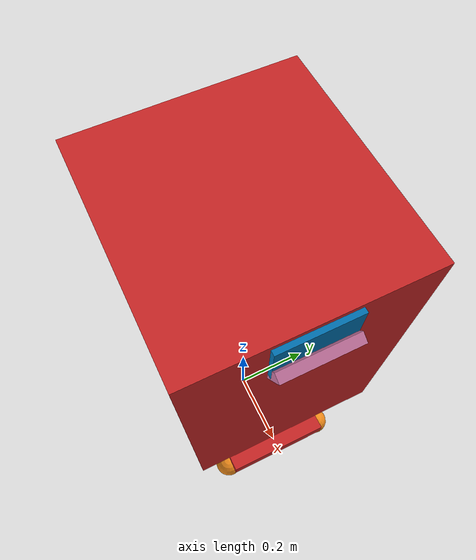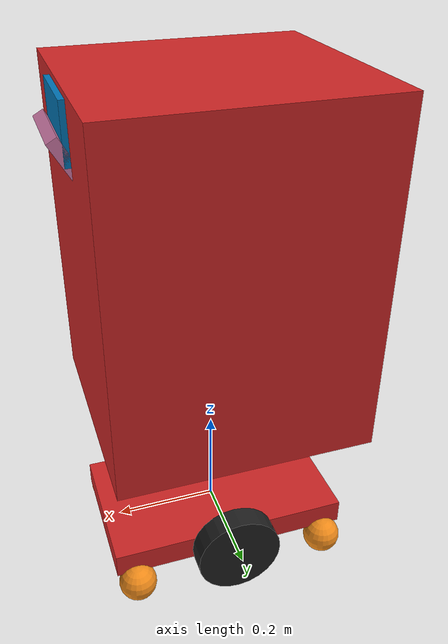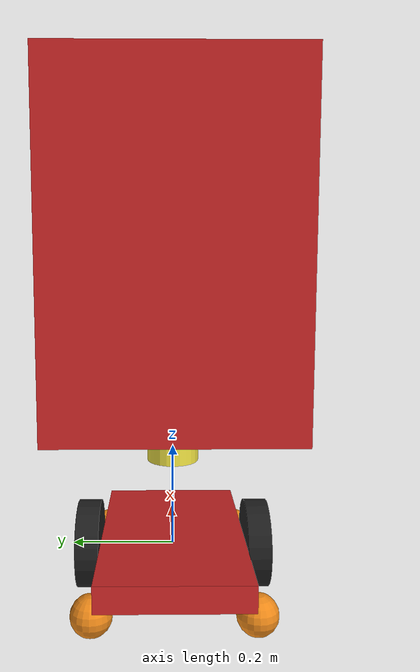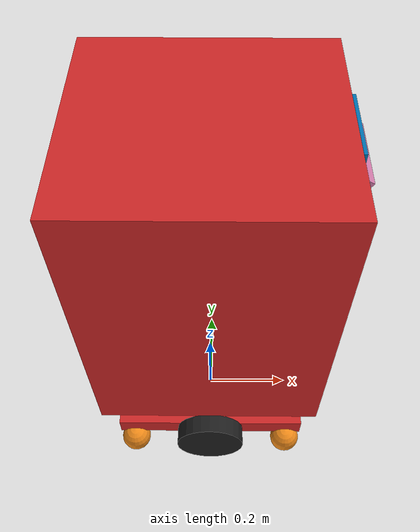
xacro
<?xml version='1.0'?>

<robot name="robot" xmlns:xacro="http://www.ros.org/wiki/xacro">

  <xacro:include filename="$(find robot_description)/urdf/robot_base.gazebo" />
  <xacro:include filename="$(find robot_description)/urdf/materials.xacro" />
  <xacro:include filename="$(find robot_description)/urdf/xacro_variables.xacro" />
  <xacro:include filename="$(find robot_description)/urdf/wheels.xacro" />
  <xacro:include filename="$(find robot_description)/urdf/sensors.xacro" />

  <!-- Add dummy base link -->
  <link name="base_link">
  </link>

  <link name='chassis'>
    <pose>0 0 0.1 0 0 0</pose>

    <inertial>
      <mass value="30.0"/>
      <origin xyz="0.0 0 0.1" rpy="0 0 0"/>
      <inertia
          ixx="1.523" ixy="0" ixz="0"
          iyy="1.597" iyz="0"
          izz="0.803"
      />
    </inertial>

    <collision name='collision'>
      <geometry>
        <box size="${chasis_box_length} ${chasis_box_width} ${chasis_box_height}"/>
      </geometry>
    </collision>

    <visual name='chassis_visual'>
      <origin xyz="0 0 0" rpy=" 0 0 0"/>
      <geometry>
        <box size="${chasis_box_length} ${chasis_box_width} ${chasis_box_height}"/>
      </geometry>
      <material name="red"/>
    </visual>

    <collision name='tower_collision'>
      <origin xyz="0 0 0.58" rpy="0 0 0"/>
      <geometry>
        <box size="${tower_box_length} ${tower_box_width} ${tower_box_height}"/>
      </geometry>
    </collision>

    <visual name='tower_visual'>
      <origin xyz="0 0 0.58" rpy="0 0 0"/>
      <geometry>
        <box size="${tower_box_length} ${tower_box_width} ${tower_box_height}"/>
      </geometry>
      <material name="red"/>
    </visual>

    <collision name='caster_collision'>
      <origin xyz="${chasis_caster_x} ${chasis_caster_y} ${chasis_caster_z}" rpy=" ${chasis_caster_r} ${chasis_caster_p} ${chasis_caster_ya}"/>
      <geometry>
        <sphere radius="${chasis_caster_radius}"/>
      </geometry>
      <surface>
        <friction>
          <ode>
            <mu>0</mu>
            <mu2>0</mu2>
            <slip1>1.0</slip1>
            <slip2>1.0</slip2>
          </ode>
        </friction>
      </surface>
    </collision>

    <visual name='caster_visual'>
      <origin xyz="${chasis_caster_x} ${chasis_caster_y} ${chasis_caster_z}" rpy=" ${chasis_caster_r} ${chasis_caster_p} ${chasis_caster_ya}"/>
      <geometry>
        <sphere radius="${chasis_caster_radius}"/>
      </geometry>
      <material name="orange"/>
    </visual>

    <collision name='caster_collision2'>
      <origin xyz="${chasis_caster2_x} ${chasis_caster2_y} ${chasis_caster2_z}" rpy=" ${chasis_caster_r} ${chasis_caster_p} ${chasis_caster_ya}"/>
      <geometry>
        <sphere radius="${chasis_caster_radius}"/>
      </geometry>
      <surface>
        <friction>
          <ode>
            <mu>0</mu>
            <mu2>0</mu2>
            <slip1>1.0</slip1>
            <slip2>1.0</slip2>
          </ode>
        </friction>
      </surface>
    </collision>

    <visual name='caster2_visual'>
      <origin xyz="${chasis_caster2_x} ${chasis_caster2_y} ${chasis_caster2_z}" rpy=" ${chasis_caster_r} ${chasis_caster_p} ${chasis_caster_ya}"/>
      <geometry>
        <sphere radius="${chasis_caster_radius}"/>
      </geometry>
      <material name="orange"/>
    </visual>

    <collision name='caster_collision3'>
      <origin xyz="${chasis_caster3_x} ${chasis_caster3_y} ${chasis_caster3_z}" rpy=" ${chasis_caster_r} ${chasis_caster_p} ${chasis_caster_ya}"/>
      <geometry>
        <sphere radius="${chasis_caster_radius}"/>
      </geometry>
      <surface>
        <friction>
          <ode>
            <mu>0</mu>
            <mu2>0</mu2>
            <slip1>1.0</slip1>
            <slip2>1.0</slip2>
          </ode>
        </friction>
      </surface>
    </collision>

    <visual name='caster3_visual'>
      <origin xyz="${chasis_caster3_x} ${chasis_caster3_y} ${chasis_caster3_z}" rpy=" ${chasis_caster_r} ${chasis_caster_p} ${chasis_caster_ya}"/>
      <geometry>
        <sphere radius="${chasis_caster_radius}"/>
      </geometry>
      <material name="orange"/>
    </visual>

    <collision name='caster_collision4'>
      <origin xyz="${chasis_caster4_x} ${chasis_caster4_y} ${chasis_caster4_z}" rpy=" ${chasis_caster_r} ${chasis_caster_p} ${chasis_caster_ya}"/>
      <geometry>
        <sphere radius="${chasis_caster_radius}"/>
      </geometry>
      <surface>
        <friction>
          <ode>
            <mu>0</mu>
            <mu2>0</mu2>
            <slip1>1.0</slip1>
            <slip2>1.0</slip2>
          </ode>
        </friction>
      </surface>
    </collision>

    <visual name='caster4_visual'>
      <origin xyz="${chasis_caster4_x} ${chasis_caster4_y} ${chasis_caster4_z}" rpy=" ${chasis_caster_r} ${chasis_caster_p} ${chasis_caster_ya}"/>
      <geometry>
        <sphere radius="${chasis_caster_radius}"/>
      </geometry>
      <material name="orange"/>
    </visual>
  </link>

  <joint name="base_joint" type="fixed">
    <parent link="base_link"/>
    <child link="chassis"/>
    <origin xyz="0 0 0" rpy="0 0 0"/>
  </joint>

  <link name="imu_link">
  </link>

  <joint name="imu_joint" type="fixed">
    <parent link="chassis"/>
    <child link="imu_link"/>
    <origin xyz="0 0 0" rpy="0 0 0"/>
  </joint>

  <link name="lidar_link">
    <visual name="lidar_visual">
      <origin xyz="0 0 0.01" rpy="0 0 0"/>
      <geometry>
        <cylinder radius="0.05" length="0.035"/>
      </geometry>
    </visual>
  </link>

  <joint name="lidar_joint" type="fixed">
    <parent link="chassis"/>
    <child link="lidar_link"/>
    <origin xyz="0 0 0.18" rpy="0 0 0"/>
  </joint>

  <link name="camera_link">
    <visual name="camera_visual">
      <origin xyz="0 0 0" rpy="0 0 0"/>
      <geometry>
        <box size="0.02 0.15 0.1"/>
      </geometry>
    </visual>
  </link>

  <joint name="camera_joint" type="fixed">
    <parent link="chassis"/>
    <child link="camera_link"/>
    <origin xyz="0.239 0 0.84" rpy="0 0 0"/>
  </joint>

  <link name="camera_link_optical">
  </link>

  <joint name="camera_optical_joint" type="fixed">
    <parent link="camera_link"/>
    <child link="camera_link_optical"/>
    <origin xyz="0 0 0" rpy="-1.5707 0 -1.5707"/>
  </joint>

  <link name="camera_link_2">
    <visual name="camera_visual_2">
      <origin xyz="0 0 0" rpy="0 0 0"/>
      <geometry>
        <box size="0.02 0.15 0.1"/>
      </geometry>
    </visual>
  </link>

  <joint name="camera_joint_2" type="fixed">
    <parent link="chassis"/>
    <child link="camera_link_2"/>
    <origin xyz="0.239 0 0.79" rpy="0 0.523598 0"/>
  </joint>

  <link name="camera_link_optical_2">
  </link>

  <joint name="camera_optical_joint_2" type="fixed">
    <parent link="camera_link_2"/>
    <child link="camera_link_optical_2"/>
    <origin xyz="0 0 0" rpy="-1.5707 0 -1.5707"/>
  </joint>

  <!-- Include wheel macro -->
  <xacro:wheels_macro />

</robot>

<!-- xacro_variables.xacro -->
<robot name="robot" xmlns:xacro="http://www.ros.org/wiki/xacro">

<!--Xacro variable declaration-->

<!--Dimentions-->

  <!--Chasis_box-->
  <xacro:property name="chasis_box_length" value="0.478" />
  <xacro:property name="chasis_box_width" value="0.28" />
  <xacro:property name="chasis_box_height" value="0.05" />

  <!--Chasis_caster-->
  <xacro:property name="chasis_caster_radius" value="0.0375" />

  <!--Wheel_cylinder-->
  <xacro:property name="wheel_cylinder_radius" value="0.085" />
  <xacro:property name="wheel_cylinder_height" value="0.045" />

  <!--Tower box-->
  <xacro:property name="tower_box_length" value="0.478" />
  <xacro:property name="tower_box_width" value="0.448" />
  <xacro:property name="tower_box_height" value="0.64" />

<!--Positions-->
  <!--Chasis_box-->
  <xacro:property name="chasis_box_x" value="0" />
  <xacro:property name="chasis_box_y" value="0" />
  <xacro:property name="chasis_box_z" value="0.15" />

  <xacro:property name="chasis_box_r" value="0" />
  <xacro:property name="chasis_box_p" value="0" />
  <xacro:property name="chasis_box_ya" value="0" />

  <!--Chasis_caster-->

  <xacro:property name="chasis_caster_r" value="0" />
  <xacro:property name="chasis_caster_p" value="0" />
  <xacro:property name="chasis_caster_ya" value="0" />

  <xacro:property name="chasis_caster_x" value="-0.2" />
  <xacro:property name="chasis_caster_y" value="0.145" />
  <xacro:property name="chasis_caster_z" value="-0.047" />

  <xacro:property name="chasis_caster2_x" value="0.2" />
  <xacro:property name="chasis_caster2_y" value="0.145" />
  <xacro:property name="chasis_caster2_z" value="-0.047" />

  <xacro:property name="chasis_caster3_x" value="-0.2" />
  <xacro:property name="chasis_caster3_y" value="-0.145" />
  <xacro:property name="chasis_caster3_z" value="-0.047" />

  <xacro:property name="chasis_caster4_x" value="0.2" />
  <xacro:property name="chasis_caster4_y" value="-0.145" />
  <xacro:property name="chasis_caster4_z" value="-0.047" />

  <!--Wheel-->
  <xacro:property name="wheel_x" value="0" />
  <xacro:property name="wheel_y" value="0" />
  <xacro:property name="wheel_z" value="0" />

  <xacro:property name="wheel_r" value="0" />
  <xacro:property name="wheel_p" value="1.5707" />
  <xacro:property name="wheel_ya" value="1.5707" />

<!--Joint variables-->

  <xacro:property name="right_wheel_x" value="0.0" />
  <xacro:property name="right_wheel_y" value="0.166" />
  <xacro:property name="right_wheel_z" value="0" />

  <xacro:property name="left_wheel_x" value="0" />
  <xacro:property name="left_wheel_y" value="-0.166" />
  <xacro:property name="left_wheel_z" value="0" />

</robot>

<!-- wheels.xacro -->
<robot xmlns:xacro="http://www.ros.org/wiki/xacro">

  <xacro:macro name="wheels_macro">
    <link name="left_wheel">
      <collision name="collision">
        <origin xyz="${wheel_x} ${wheel_y} ${wheel_z}" rpy="${wheel_r} ${wheel_p} ${wheel_ya}"/>
        <geometry>
          <cylinder radius="${wheel_cylinder_radius}" length="${wheel_cylinder_height}"/>
        </geometry>
        <surface>
          <friction>
            <ode>
              <mu>1</mu>
              <mu2>1</mu2>
            </ode>
          </friction>
        </surface>
      </collision>
      <visual name="left_wheel_visual">
        <origin xyz="${wheel_x} ${wheel_y} ${wheel_z}" rpy="${wheel_r} ${wheel_p} ${wheel_ya}"/>
        <geometry>
          <cylinder radius="${wheel_cylinder_radius}" length="${wheel_cylinder_height}"/>
        </geometry>
        <material name="black"/>
      </visual>
      <inertial>
        <origin xyz="${wheel_x} ${wheel_y} ${wheel_z}" rpy="${wheel_r} ${wheel_p} ${wheel_ya}"/>
        <mass value="1"/>
        <cylinder_inertia m="1" r="${wheel_cylinder_radius}" h="${wheel_cylinder_height}"/>
        <inertia
          ixx="0.001972" ixy="0.0" ixz="0.0"
          iyy="0.001972" iyz="0.0"
          izz="0.003613"/>
      </inertial>
    </link>

    <link name="right_wheel">
      <collision name="collision">
        <origin xyz="${wheel_x} ${wheel_y} ${wheel_z}" rpy="${wheel_r} ${wheel_p} ${wheel_ya}"/>
        <geometry>
          <cylinder radius="${wheel_cylinder_radius}" length="${wheel_cylinder_height}"/>
        </geometry>
        <surface>
          <friction>
            <ode>
              <mu>1</mu>
              <mu2>1</mu2>
            </ode>
          </friction>
        </surface>
      </collision>
      <visual name="right_wheel_visual">
        <origin xyz="${wheel_x} ${wheel_y} ${wheel_z}" rpy="${wheel_r} ${wheel_p} ${wheel_ya}"/>
        <geometry>
          <cylinder radius="${wheel_cylinder_radius}" length="${wheel_cylinder_height}"/>
        </geometry>
        <material name="black"/>
      </visual>
      <inertial>
        <origin xyz="${wheel_x} ${wheel_y} ${wheel_z}" rpy="${wheel_r} ${wheel_p} ${wheel_ya}"/>
        <mass value="1"/>
        <cylinder_inertia m="1" r="${wheel_cylinder_radius}" h="${wheel_cylinder_height}"/>
        <inertia
          ixx="0.001972" ixy="0.0" ixz="0.0"
          iyy="0.001972" iyz="0.0"
          izz="0.003613"/>
      </inertial>
    </link>

    <joint type="continuous" name="left_wheel_hinge">
      <origin xyz="${left_wheel_x} ${left_wheel_y} ${left_wheel_z}" rpy="0 0 0"/>
      <child link="left_wheel"/>
      <parent link="base_link"/>
      <axis xyz="0 1 0" rpy="0 0 0"/>
      <dynamics damping="0.0" friction="0.0"/>
    </joint>

    <joint type="continuous" name="right_wheel_hinge">
      <origin xyz="${right_wheel_x} ${right_wheel_y} ${right_wheel_z}" rpy="0 0 0"/>
      <child link="right_wheel"/>
      <parent link="base_link"/>
      <axis xyz="0 1 0" rpy="0 0 0"/>
      <dynamics damping="0.0" friction="0.0"/>
    </joint>
  </xacro:macro>

</robot>
